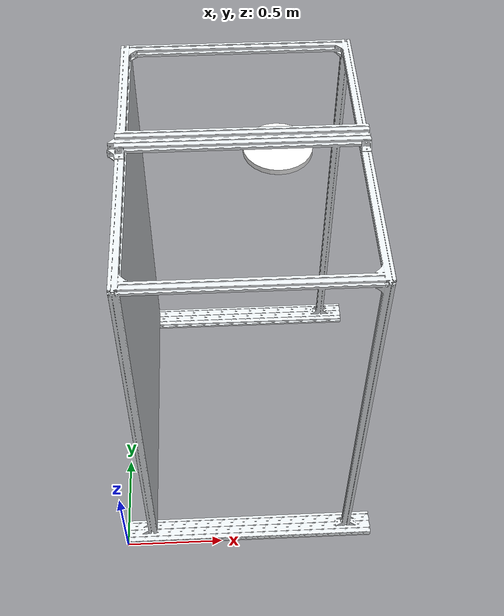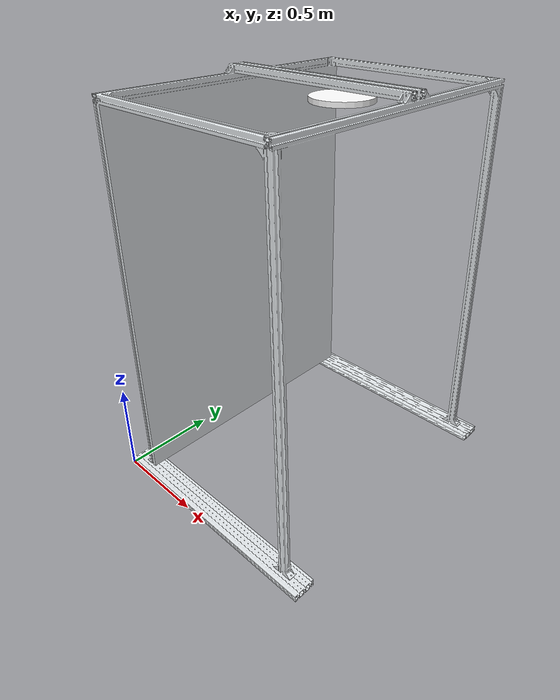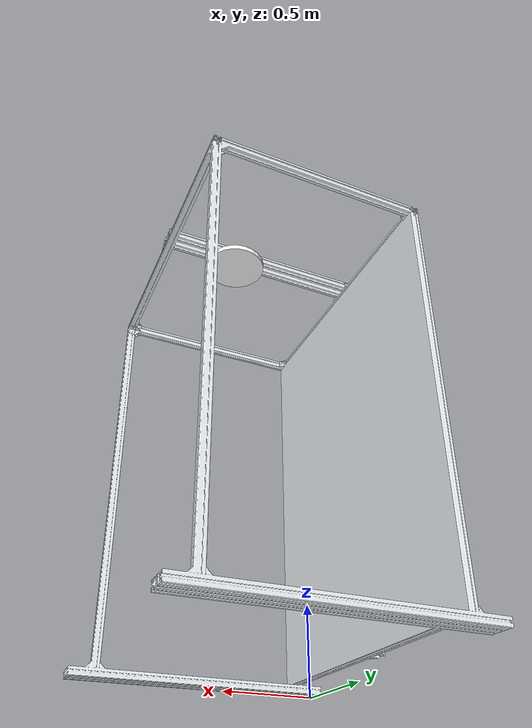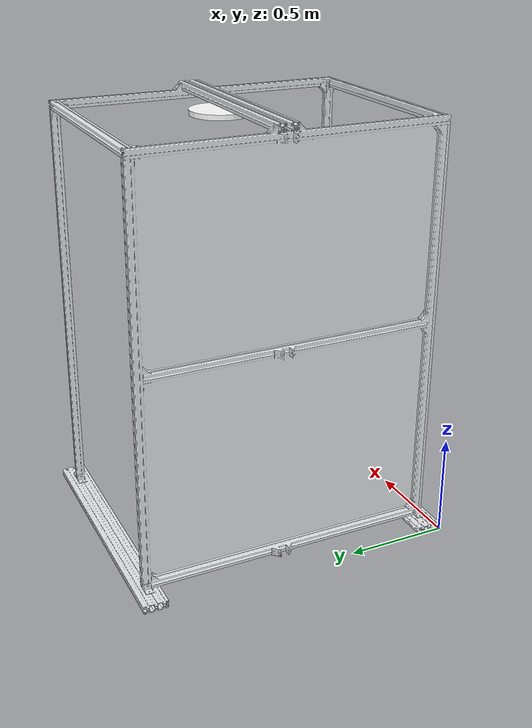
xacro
<?xml version="1.0" ?>
<robot name="pneutrunk" xmlns:xacro="http://www.ros.org/wiki/xacro">

<!-- TODO: Create base link -->
<xacro:include filename="$(find pneutrunk_description)/urdf/pneutrunk_table_macro.xacro"/>
<xacro:pneutrunk_table />

<!-- Add robot -->
 <xacro:include filename="$(find pneutrunk_description)/urdf/segment_macro.xacro"/>
<xacro:segment id="1" baselink="tool_link"/>
<xacro:segment id="2" baselink="tool_link"/>
<xacro:segment id="3" baselink="tool_link"/>
<xacro:segment id="4" baselink="tool_link"/>
<xacro:segment id="5" baselink="tool_link"/>
<xacro:segment id="6" baselink="tool_link"/>
<xacro:segment id="7" baselink="tool_link"/>

</robot>

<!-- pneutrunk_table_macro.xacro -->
<robot xmlns:xacro="http://wiki.ros.org/xacro">

<xacro:macro name="pneutrunk_table">
    <link name="base_link">
    <visual>
        <origin
            xyz="0 0 0"
            rpy="0 0 0" />
        <geometry>
            <mesh filename="package://pneutrunk_description/meshes/base_link.STL" />
        </geometry>
        <material name="">
            <color rgba="0.898039215686275 0.917647058823529 0.929411764705882 1" />
      </material>
    </visual>
    </link>

    <link name="tool_link"/>

    <joint name="base_tool_joint" type="fixed">
        <origin xyz="0.8 0.834121320343554 2.03812132034355"
                rpy="0 0 0" />
        <parent link="base_link" />
        <child link="tool_link" />
        <axis xyz="0 0 0" />
    </joint>
</xacro:macro>

</robot>

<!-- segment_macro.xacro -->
<robot xmlns:xacro="http://wiki.ros.org/xacro">

<material name="white">
    <color rgba="1 1 1 1"/>
</material>

<xacro:macro name="segment" params="id baselink">

    <link name="segment_${id}">
        <visual>
            <geometry>
                <cylinder length="0.025" radius="0.15"/>
                <origin rpy="0 0 0" xyz="0 0 0"/>
            </geometry>
            <material name="white"/>
        </visual>
    </link>

    <joint name="segment_${id}_joint" type="fixed">
        <parent link="${baselink}"/>
        <child link="segment_${id}"/>
    </joint>

</xacro:macro>

</robot>
